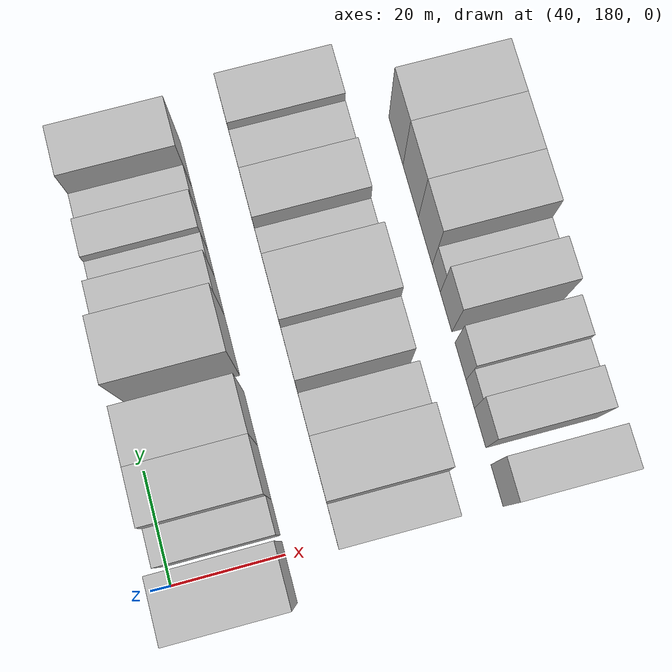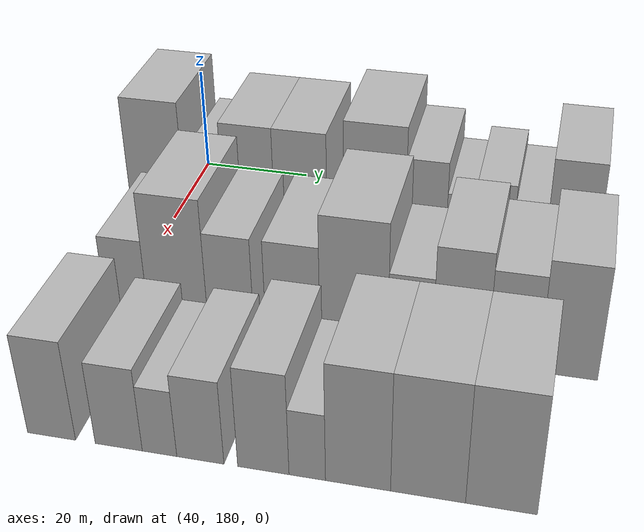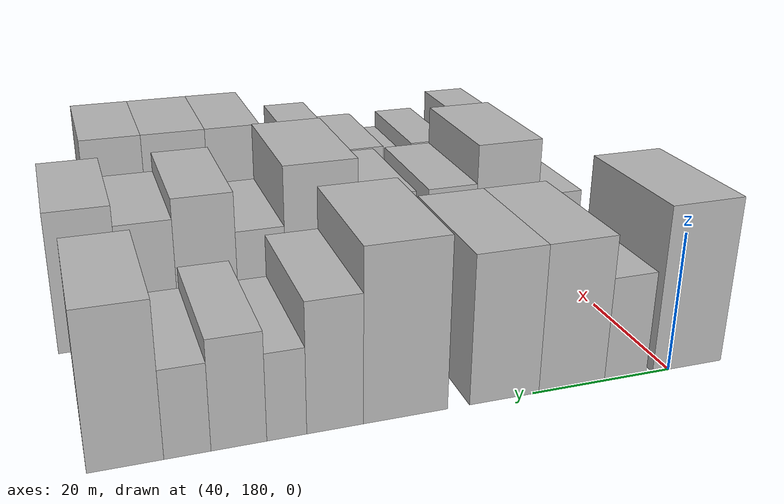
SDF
<sdf version="1.6">
 <world name="default">
  <model name="building_56">
   <static>1</static>
   <pose>50.0000 177.0735 0 0.000000 0.000000 0.000000</pose>
   <link name="link">
    <pose>0 0 12.00 0 0 0</pose>
    <collision name="collision"><geometry><box><size>20.0000 10.5805 24.0000</size></box></geometry></collision>
    <visual name="visual">
     <cast_shadows>0</cast_shadows>
     <geometry><box><size>20.0000 10.5805 24.0000</size></box></geometry>
     <material>
      <script>
       <uri>model://HANNAS_wall/materials/scripts</uri>
       <uri>model://HANNAS_wall/materials/textures</uri>
       <name>vrc/HANNAS_wall</name>
      </script>
     </material>
    </visual>
   </link>
  </model>
  <model name="building_57">
   <static>1</static>
   <pose>50.0000 186.5038 0 0.000000 0.000000 0.000000</pose>
   <link name="link">
    <pose>0 0 7.50 0 0 0</pose>
    <collision name="collision"><geometry><box><size>20.0000 6.2799 15.0000</size></box></geometry></collision>
    <visual name="visual">
     <cast_shadows>0</cast_shadows>
     <geometry><box><size>20.0000 6.2799 15.0000</size></box></geometry>
     <material>
      <script>
       <uri>model://HANNAS_wall/materials/scripts</uri>
       <uri>model://HANNAS_wall/materials/textures</uri>
       <name>vrc/HANNAS_wall</name>
      </script>
     </material>
    </visual>
   </link>
  </model>
  <model name="building_58">
   <static>1</static>
   <pose>50.0000 194.4133 0 0.000000 0.000000 0.000000</pose>
   <link name="link">
    <pose>0 0 10.50 0 0 0</pose>
    <collision name="collision"><geometry><box><size>20.0000 9.5391 21.0000</size></box></geometry></collision>
    <visual name="visual">
     <cast_shadows>0</cast_shadows>
     <geometry><box><size>20.0000 9.5391 21.0000</size></box></geometry>
     <material>
      <script>
       <uri>model://HANNAS_wall/materials/scripts</uri>
       <uri>model://HANNAS_wall/materials/textures</uri>
       <name>vrc/HANNAS_wall</name>
      </script>
     </material>
    </visual>
   </link>
  </model>
  <model name="building_59">
   <static>1</static>
   <pose>50.0000 204.0315 0 0.000000 0.000000 0.000000</pose>
   <link name="link">
    <pose>0 0 10.50 0 0 0</pose>
    <collision name="collision"><geometry><box><size>20.0000 9.6973 21.0000</size></box></geometry></collision>
    <visual name="visual">
     <cast_shadows>0</cast_shadows>
     <geometry><box><size>20.0000 9.6973 21.0000</size></box></geometry>
     <material>
      <script>
       <uri>model://HANNAS_wall/materials/scripts</uri>
       <uri>model://HANNAS_wall/materials/textures</uri>
       <name>vrc/HANNAS_wall</name>
      </script>
     </material>
    </visual>
   </link>
  </model>
  <model name="building_60">
   <static>1</static>
   <pose>50.0000 217.4549 0 0.000000 0.000000 0.000000</pose>
   <link name="link">
    <pose>0 0 12.00 0 0 0</pose>
    <collision name="collision"><geometry><box><size>20.0000 11.1494 24.0000</size></box></geometry></collision>
    <visual name="visual">
     <cast_shadows>0</cast_shadows>
     <geometry><box><size>20.0000 11.1494 24.0000</size></box></geometry>
     <material>
      <script>
       <uri>model://HANNAS_wall/materials/scripts</uri>
       <uri>model://HANNAS_wall/materials/textures</uri>
       <name>vrc/HANNAS_wall</name>
      </script>
     </material>
    </visual>
   </link>
  </model>
  <model name="building_61">
   <static>1</static>
   <pose>50.0000 226.6363 0 0.000000 0.000000 0.000000</pose>
   <link name="link">
    <pose>0 0 9.00 0 0 0</pose>
    <collision name="collision"><geometry><box><size>20.0000 7.2135 18.0000</size></box></geometry></collision>
    <visual name="visual">
     <cast_shadows>0</cast_shadows>
     <geometry><box><size>20.0000 7.2135 18.0000</size></box></geometry>
     <material>
      <script>
       <uri>model://HANNAS_wall/materials/scripts</uri>
       <uri>model://HANNAS_wall/materials/textures</uri>
       <name>vrc/HANNAS_wall</name>
      </script>
     </material>
    </visual>
   </link>
  </model>
  <model name="building_62">
   <static>1</static>
   <pose>50.0000 232.7166 0 0.000000 0.000000 0.000000</pose>
   <link name="link">
    <pose>0 0 6.00 0 0 0</pose>
    <collision name="collision"><geometry><box><size>20.0000 4.9470 12.0000</size></box></geometry></collision>
    <visual name="visual">
     <cast_shadows>0</cast_shadows>
     <geometry><box><size>20.0000 4.9470 12.0000</size></box></geometry>
     <material>
      <script>
       <uri>model://HANNAS_wall/materials/scripts</uri>
       <uri>model://HANNAS_wall/materials/textures</uri>
       <name>vrc/HANNAS_wall</name>
      </script>
     </material>
    </visual>
   </link>
  </model>
  <model name="building_63">
   <static>1</static>
   <pose>50.0000 238.5636 0 0.000000 0.000000 0.000000</pose>
   <link name="link">
    <pose>0 0 7.50 0 0 0</pose>
    <collision name="collision"><geometry><box><size>20.0000 6.7471 15.0000</size></box></geometry></collision>
    <visual name="visual">
     <cast_shadows>0</cast_shadows>
     <geometry><box><size>20.0000 6.7471 15.0000</size></box></geometry>
     <material>
      <script>
       <uri>model://HANNAS_wall/materials/scripts</uri>
       <uri>model://HANNAS_wall/materials/textures</uri>
       <name>vrc/HANNAS_wall</name>
      </script>
     </material>
    </visual>
   </link>
  </model>
  <model name="building_64">
   <static>1</static>
   <pose>50.0000 244.7161 0 0.000000 0.000000 0.000000</pose>
   <link name="link">
    <pose>0 0 6.00 0 0 0</pose>
    <collision name="collision"><geometry><box><size>20.0000 5.5579 12.0000</size></box></geometry></collision>
    <visual name="visual">
     <cast_shadows>0</cast_shadows>
     <geometry><box><size>20.0000 5.5579 12.0000</size></box></geometry>
     <material>
      <script>
       <uri>model://HANNAS_wall/materials/scripts</uri>
       <uri>model://HANNAS_wall/materials/textures</uri>
       <name>vrc/HANNAS_wall</name>
      </script>
     </material>
    </visual>
   </link>
  </model>
  <model name="building_65">
   <static>1</static>
   <pose>50.0000 251.9067 0 0.000000 0.000000 0.000000</pose>
   <link name="link">
    <pose>0 0 10.50 0 0 0</pose>
    <collision name="collision"><geometry><box><size>20.0000 8.8235 21.0000</size></box></geometry></collision>
    <visual name="visual">
     <cast_shadows>0</cast_shadows>
     <geometry><box><size>20.0000 8.8235 21.0000</size></box></geometry>
     <material>
      <script>
       <uri>model://HANNAS_wall/materials/scripts</uri>
       <uri>model://HANNAS_wall/materials/textures</uri>
       <name>vrc/HANNAS_wall</name>
      </script>
     </material>
    </visual>
   </link>
  </model>
  <model name="building_131">
   <static>1</static>
   <pose>79.0000 182.2149 0 0.000000 0.000000 0.000000</pose>
   <link name="link">
    <pose>0 0 7.50 0 0 0</pose>
    <collision name="collision"><geometry><box><size>20.0000 7.2823 15.0000</size></box></geometry></collision>
    <visual name="visual">
     <cast_shadows>0</cast_shadows>
     <geometry><box><size>20.0000 7.2823 15.0000</size></box></geometry>
     <material>
      <script>
       <uri>model://HANNAS_wall/materials/scripts</uri>
       <uri>model://HANNAS_wall/materials/textures</uri>
       <name>vrc/HANNAS_wall</name>
      </script>
     </material>
    </visual>
   </link>
  </model>
  <model name="building_132">
   <static>1</static>
   <pose>79.0000 190.9403 0 0.000000 0.000000 0.000000</pose>
   <link name="link">
    <pose>0 0 12.00 0 0 0</pose>
    <collision name="collision"><geometry><box><size>20.0000 10.1685 24.0000</size></box></geometry></collision>
    <visual name="visual">
     <cast_shadows>0</cast_shadows>
     <geometry><box><size>20.0000 10.1685 24.0000</size></box></geometry>
     <material>
      <script>
       <uri>model://HANNAS_wall/materials/scripts</uri>
       <uri>model://HANNAS_wall/materials/textures</uri>
       <name>vrc/HANNAS_wall</name>
      </script>
     </material>
    </visual>
   </link>
  </model>
  <model name="building_133">
   <static>1</static>
   <pose>79.0000 199.8588 0 0.000000 0.000000 0.000000</pose>
   <link name="link">
    <pose>0 0 9.00 0 0 0</pose>
    <collision name="collision"><geometry><box><size>20.0000 7.6685 18.0000</size></box></geometry></collision>
    <visual name="visual">
     <cast_shadows>0</cast_shadows>
     <geometry><box><size>20.0000 7.6685 18.0000</size></box></geometry>
     <material>
      <script>
       <uri>model://HANNAS_wall/materials/scripts</uri>
       <uri>model://HANNAS_wall/materials/textures</uri>
       <name>vrc/HANNAS_wall</name>
      </script>
     </material>
    </visual>
   </link>
  </model>
  <model name="building_134">
   <static>1</static>
   <pose>79.0000 210.1257 0 0.000000 0.000000 0.000000</pose>
   <link name="link">
    <pose>0 0 9.00 0 0 0</pose>
    <collision name="collision"><geometry><box><size>20.0000 8.8654 18.0000</size></box></geometry></collision>
    <visual name="visual">
     <cast_shadows>0</cast_shadows>
     <geometry><box><size>20.0000 8.8654 18.0000</size></box></geometry>
     <material>
      <script>
       <uri>model://HANNAS_wall/materials/scripts</uri>
       <uri>model://HANNAS_wall/materials/textures</uri>
       <name>vrc/HANNAS_wall</name>
      </script>
     </material>
    </visual>
   </link>
  </model>
  <model name="building_135">
   <static>1</static>
   <pose>79.0000 220.0191 0 0.000000 0.000000 0.000000</pose>
   <link name="link">
    <pose>0 0 12.00 0 0 0</pose>
    <collision name="collision"><geometry><box><size>20.0000 10.9213 24.0000</size></box></geometry></collision>
    <visual name="visual">
     <cast_shadows>0</cast_shadows>
     <geometry><box><size>20.0000 10.9213 24.0000</size></box></geometry>
     <material>
      <script>
       <uri>model://HANNAS_wall/materials/scripts</uri>
       <uri>model://HANNAS_wall/materials/textures</uri>
       <name>vrc/HANNAS_wall</name>
      </script>
     </material>
    </visual>
   </link>
  </model>
  <model name="building_136">
   <static>1</static>
   <pose>79.0000 228.9990 0 0.000000 0.000000 0.000000</pose>
   <link name="link">
    <pose>0 0 7.50 0 0 0</pose>
    <collision name="collision"><geometry><box><size>20.0000 7.0386 15.0000</size></box></geometry></collision>
    <visual name="visual">
     <cast_shadows>0</cast_shadows>
     <geometry><box><size>20.0000 7.0386 15.0000</size></box></geometry>
     <material>
      <script>
       <uri>model://HANNAS_wall/materials/scripts</uri>
       <uri>model://HANNAS_wall/materials/textures</uri>
       <name>vrc/HANNAS_wall</name>
      </script>
     </material>
    </visual>
   </link>
  </model>
  <model name="building_137">
   <static>1</static>
   <pose>79.0000 236.8319 0 0.000000 0.000000 0.000000</pose>
   <link name="link">
    <pose>0 0 10.50 0 0 0</pose>
    <collision name="collision"><geometry><box><size>20.0000 8.6272 21.0000</size></box></geometry></collision>
    <visual name="visual">
     <cast_shadows>0</cast_shadows>
     <geometry><box><size>20.0000 8.6272 21.0000</size></box></geometry>
     <material>
      <script>
       <uri>model://HANNAS_wall/materials/scripts</uri>
       <uri>model://HANNAS_wall/materials/textures</uri>
       <name>vrc/HANNAS_wall</name>
      </script>
     </material>
    </visual>
   </link>
  </model>
  <model name="building_138">
   <static>1</static>
   <pose>79.0000 245.0990 0 0.000000 0.000000 0.000000</pose>
   <link name="link">
    <pose>0 0 9.00 0 0 0</pose>
    <collision name="collision"><geometry><box><size>20.0000 7.9072 18.0000</size></box></geometry></collision>
    <visual name="visual">
     <cast_shadows>0</cast_shadows>
     <geometry><box><size>20.0000 7.9072 18.0000</size></box></geometry>
     <material>
      <script>
       <uri>model://HANNAS_wall/materials/scripts</uri>
       <uri>model://HANNAS_wall/materials/textures</uri>
       <name>vrc/HANNAS_wall</name>
      </script>
     </material>
    </visual>
   </link>
  </model>
  <model name="building_139">
   <static>1</static>
   <pose>79.0000 253.5042 0 0.000000 0.000000 0.000000</pose>
   <link name="link">
    <pose>0 0 10.50 0 0 0</pose>
    <collision name="collision"><geometry><box><size>20.0000 8.9031 21.0000</size></box></geometry></collision>
    <visual name="visual">
     <cast_shadows>0</cast_shadows>
     <geometry><box><size>20.0000 8.9031 21.0000</size></box></geometry>
     <material>
      <script>
       <uri>model://HANNAS_wall/materials/scripts</uri>
       <uri>model://HANNAS_wall/materials/textures</uri>
       <name>vrc/HANNAS_wall</name>
      </script>
     </material>
    </visual>
   </link>
  </model>
  <model name="building_205">
   <static>1</static>
   <pose>108.0000 181.9258 0 0.000000 0.000000 0.000000</pose>
   <link name="link">
    <pose>0 0 9.00 0 0 0</pose>
    <collision name="collision"><geometry><box><size>20.0000 7.3771 18.0000</size></box></geometry></collision>
    <visual name="visual">
     <cast_shadows>0</cast_shadows>
     <geometry><box><size>20.0000 7.3771 18.0000</size></box></geometry>
     <material>
      <script>
       <uri>model://HANNAS_wall/materials/scripts</uri>
       <uri>model://HANNAS_wall/materials/textures</uri>
       <name>vrc/HANNAS_wall</name>
      </script>
     </material>
    </visual>
   </link>
  </model>
  <model name="building_206">
   <static>1</static>
   <pose>108.0000 192.1619 0 0.000000 0.000000 0.000000</pose>
   <link name="link">
    <pose>0 0 7.50 0 0 0</pose>
    <collision name="collision"><geometry><box><size>20.0000 7.0951 15.0000</size></box></geometry></collision>
    <visual name="visual">
     <cast_shadows>0</cast_shadows>
     <geometry><box><size>20.0000 7.0951 15.0000</size></box></geometry>
     <material>
      <script>
       <uri>model://HANNAS_wall/materials/scripts</uri>
       <uri>model://HANNAS_wall/materials/textures</uri>
       <name>vrc/HANNAS_wall</name>
      </script>
     </material>
    </visual>
   </link>
  </model>
  <model name="building_207">
   <static>1</static>
   <pose>108.0000 198.2757 0 0.000000 0.000000 0.000000</pose>
   <link name="link">
    <pose>0 0 6.00 0 0 0</pose>
    <collision name="collision"><geometry><box><size>20.0000 5.1326 12.0000</size></box></geometry></collision>
    <visual name="visual">
     <cast_shadows>0</cast_shadows>
     <geometry><box><size>20.0000 5.1326 12.0000</size></box></geometry>
     <material>
      <script>
       <uri>model://HANNAS_wall/materials/scripts</uri>
       <uri>model://HANNAS_wall/materials/textures</uri>
       <name>vrc/HANNAS_wall</name>
      </script>
     </material>
    </visual>
   </link>
  </model>
  <model name="building_208">
   <static>1</static>
   <pose>108.0000 204.3008 0 0.000000 0.000000 0.000000</pose>
   <link name="link">
    <pose>0 0 7.50 0 0 0</pose>
    <collision name="collision"><geometry><box><size>20.0000 6.9176 15.0000</size></box></geometry></collision>
    <visual name="visual">
     <cast_shadows>0</cast_shadows>
     <geometry><box><size>20.0000 6.9176 15.0000</size></box></geometry>
     <material>
      <script>
       <uri>model://HANNAS_wall/materials/scripts</uri>
       <uri>model://HANNAS_wall/materials/textures</uri>
       <name>vrc/HANNAS_wall</name>
      </script>
     </material>
    </visual>
   </link>
  </model>
  <model name="building_209">
   <static>1</static>
   <pose>108.0000 213.4534 0 0.000000 0.000000 0.000000</pose>
   <link name="link">
    <pose>0 0 9.00 0 0 0</pose>
    <collision name="collision"><geometry><box><size>20.0000 7.3876 18.0000</size></box></geometry></collision>
    <visual name="visual">
     <cast_shadows>0</cast_shadows>
     <geometry><box><size>20.0000 7.3876 18.0000</size></box></geometry>
     <material>
      <script>
       <uri>model://HANNAS_wall/materials/scripts</uri>
       <uri>model://HANNAS_wall/materials/textures</uri>
       <name>vrc/HANNAS_wall</name>
      </script>
     </material>
    </visual>
   </link>
  </model>
  <model name="building_210">
   <static>1</static>
   <pose>108.0000 219.7365 0 0.000000 0.000000 0.000000</pose>
   <link name="link">
    <pose>0 0 6.00 0 0 0</pose>
    <collision name="collision"><geometry><box><size>20.0000 5.1786 12.0000</size></box></geometry></collision>
    <visual name="visual">
     <cast_shadows>0</cast_shadows>
     <geometry><box><size>20.0000 5.1786 12.0000</size></box></geometry>
     <material>
      <script>
       <uri>model://HANNAS_wall/materials/scripts</uri>
       <uri>model://HANNAS_wall/materials/textures</uri>
       <name>vrc/HANNAS_wall</name>
      </script>
     </material>
    </visual>
   </link>
  </model>
  <model name="building_211">
   <static>1</static>
   <pose>108.0000 226.8703 0 0.000000 0.000000 0.000000</pose>
   <link name="link">
    <pose>0 0 10.50 0 0 0</pose>
    <collision name="collision"><geometry><box><size>20.0000 9.0889 21.0000</size></box></geometry></collision>
    <visual name="visual">
     <cast_shadows>0</cast_shadows>
     <geometry><box><size>20.0000 9.0889 21.0000</size></box></geometry>
     <material>
      <script>
       <uri>model://HANNAS_wall/materials/scripts</uri>
       <uri>model://HANNAS_wall/materials/textures</uri>
       <name>vrc/HANNAS_wall</name>
      </script>
     </material>
    </visual>
   </link>
  </model>
  <model name="building_212">
   <static>1</static>
   <pose>108.0000 236.5412 0 0.000000 0.000000 0.000000</pose>
   <link name="link">
    <pose>0 0 10.50 0 0 0</pose>
    <collision name="collision"><geometry><box><size>20.0000 10.2530 21.0000</size></box></geometry></collision>
    <visual name="visual">
     <cast_shadows>0</cast_shadows>
     <geometry><box><size>20.0000 10.2530 21.0000</size></box></geometry>
     <material>
      <script>
       <uri>model://HANNAS_wall/materials/scripts</uri>
       <uri>model://HANNAS_wall/materials/textures</uri>
       <name>vrc/HANNAS_wall</name>
      </script>
     </material>
    </visual>
   </link>
  </model>
  <model name="building_213">
   <static>1</static>
   <pose>108.0000 246.4731 0 0.000000 0.000000 0.000000</pose>
   <link name="link">
    <pose>0 0 10.50 0 0 0</pose>
    <collision name="collision"><geometry><box><size>20.0000 9.6108 21.0000</size></box></geometry></collision>
    <visual name="visual">
     <cast_shadows>0</cast_shadows>
     <geometry><box><size>20.0000 9.6108 21.0000</size></box></geometry>
     <material>
      <script>
       <uri>model://HANNAS_wall/materials/scripts</uri>
       <uri>model://HANNAS_wall/materials/textures</uri>
       <name>vrc/HANNAS_wall</name>
      </script>
     </material>
    </visual>
   </link>
  </model>
 </world>
</sdf>
